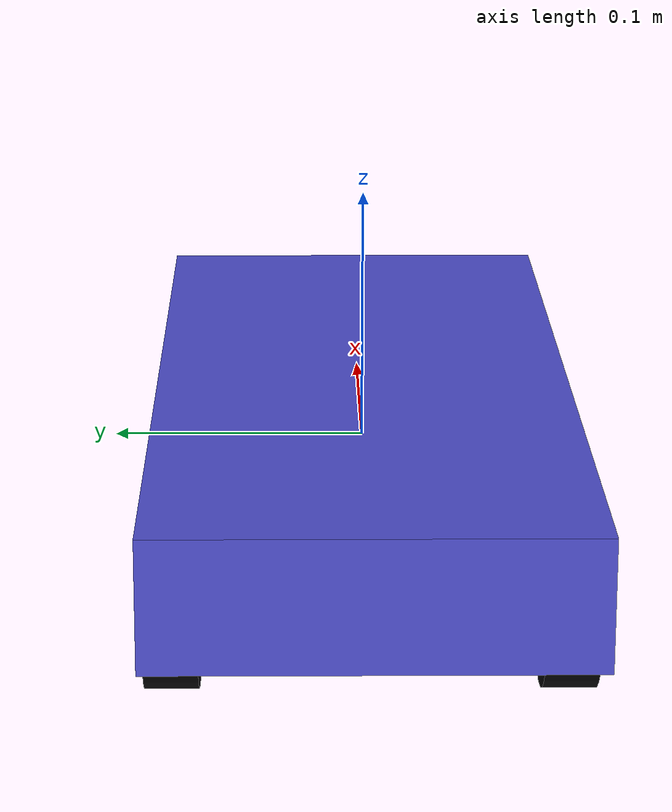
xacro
<?xml version="1.0"?>
<robot xmlns:xacro="http://ros.org/wiki/xacro" name="simple_pickup">

    <xacro:macro name="four_wheel_car"
        params="prefix='' base_length=0.392 base_width=0.165 base_height=0.05 wheel_radius=0.03 wheel_width=0.02 track_width=0.145 wheelbase=0.26 ground_clearance=0.03 chassis_mass=2.0 wheel_mass=0.2 max_steer=0.65 color='Blue'">

        <!-- computed positions -->
        <xacro:property name="x_front" value="${wheelbase/2}" />
        <xacro:property name="x_rear" value="${-wheelbase/2}" />
        <xacro:property name="y_left" value="${track_width/2}" />
        <xacro:property name="y_right" value="${-track_width/2}" />
        <!-- z_wheel chosen so the chassis bottom sits `ground_clearance` above wheel bottoms -->
        <xacro:property name="z_wheel" value="${-base_height/2 + wheel_radius - ground_clearance}" />

        <!-- base/chassis -->
        <link name="${prefix}base_link">
            <visual>
                <origin xyz="0 0 0" rpy="0 0 0" />
                <geometry>
                    <box size="${base_length} ${base_width} ${base_height}" />
                </geometry>
                <material name="${color}">
                    <color rgba="0.3 0.3 0.8 1.0" />
                </material>
            </visual>
            <collision>
                <origin xyz="0 0 0" rpy="0 0 0" />
                <geometry>
                    <box size="${base_length} ${base_width} ${base_height}" />
                </geometry>
            </collision>
            <inertial>
                <!-- approximate box inertia -->
                <mass value="${chassis_mass}" />
                <origin xyz="0 0 0" />
                <inertia
                    ixx="${(1.0/12.0)*chassis_mass*(base_height*base_height + base_width*base_width)}"
                    ixy="0.0" ixz="0.0"
                    iyy="${(1.0/12.0)*chassis_mass*(base_length*base_length + base_height*base_height)}"
                    iyz="0.0"
                    izz="${(1.0/12.0)*chassis_mass*(base_length*base_length + base_width*base_width)}" />
            </inertial>
        </link>

        <!-- Virtual footprint link: used by navigation stacks to represent the robot's
               footprint projected onto the ground plane. No visual or collision. -->
        <link name="${prefix}base_footprint" />

        <!-- Fixed joint from chassis center to footprint at ground level. We place the
               footprint at the wheel bottom (ground) computed as -base_height/2 - ground_clearance -->
        <joint name="${prefix}base_footprint_joint" type="fixed">
            <parent link="${prefix}base_link" />
            <child link="${prefix}base_footprint" />
            <origin xyz="0 0 ${-base_height/2 - ground_clearance}" rpy="0 0 0" />
        </joint>

        <!-- helper macro to add a wheel (visual + collision + inertial) -->
        <xacro:macro name="wheel_link" params="name">
            <link name="${name}">
                <visual>
                    <!-- rotate cylinder so axis aligns with wheel rotation axis (y) -->
                    <origin xyz="0 0 0" rpy="1.5708 0 0" />
                    <geometry>
                        <cylinder radius="${wheel_radius}" length="${wheel_width}" />
                    </geometry>
                    <material name="Black">
                        <color rgba="0.05 0.05 0.05 1.0" />
                    </material>
                </visual>
                <collision>
                    <origin xyz="0 0 0" rpy="1.5708 0 0" />
                    <geometry>
                        <cylinder radius="${wheel_radius}" length="${wheel_width}" />
                    </geometry>
                </collision>
                <inertial>
                    <mass value="${wheel_mass}" />
                    <origin xyz="0 0 0" />
                    <!-- rough cylinder inertia -->
                    <inertia ixx="${0.5*wheel_mass*wheel_radius*wheel_radius}" ixy="0.0" ixz="0.0"
                        iyy="${(1.0/12.0)*wheel_mass*(3*wheel_radius*wheel_radius + wheel_width*wheel_width)}"
                        iyz="0.0"
                        izz="${(1.0/12.0)*wheel_mass*(3*wheel_radius*wheel_radius + wheel_width*wheel_width)}" />
                </inertial>
            </link>
        </xacro:macro>

        <!-- FRONT LEFT wheel + steering -->
        <link name="${prefix}front_left_steer_link">
            <inertial>
                <mass value="0.01" />
                <origin xyz="0 0 0" />
                <inertia ixx="0.00001" ixy="0.0" ixz="0.0" iyy="0.00001" iyz="0.0" izz="0.00001" />
            </inertial>
        </link>
        <joint name="${prefix}front_left_steer_joint" type="revolute">
            <parent link="${prefix}base_link" />
            <child link="${prefix}front_left_steer_link" />
            <origin xyz="${x_front} ${y_left} ${z_wheel}" rpy="0 0 0" />
            <axis xyz="0 0 1" />
            <limit lower="${-max_steer}" upper="${max_steer}" effort="10.0" velocity="1.0" />
        </joint>

        <xacro:wheel_link name="${prefix}front_left_wheel_link" />
        <joint name="${prefix}front_left_wheel_joint" type="continuous">
            <parent link="${prefix}front_left_steer_link" />
            <child link="${prefix}front_left_wheel_link" />
            <origin xyz="0 0 0" rpy="0 0 0" />
            <!-- wheel rotation axis (y) -->
            <axis xyz="0 1 0" />
        </joint>

        <!-- FRONT RIGHT wheel + steering -->
        <link name="${prefix}front_right_steer_link">
            <inertial>
                <mass value="0.01" />
                <origin xyz="0 0 0" />
                <inertia ixx="0.00001" ixy="0.0" ixz="0.0" iyy="0.00001" iyz="0.0" izz="0.00001" />
            </inertial>
        </link>
        <joint name="${prefix}front_right_steer_joint" type="revolute">
            <parent link="${prefix}base_link" />
            <child link="${prefix}front_right_steer_link" />
            <origin xyz="${x_front} ${y_right} ${z_wheel}" rpy="0 0 0" />
            <axis xyz="0 0 1" />
            <limit lower="${-max_steer}" upper="${max_steer}" effort="10.0" velocity="1.0" />
        </joint>

        <xacro:wheel_link name="${prefix}front_right_wheel_link" />
        <joint name="${prefix}front_right_wheel_joint" type="continuous">
            <parent link="${prefix}front_right_steer_link" />
            <child link="${prefix}front_right_wheel_link" />
            <origin xyz="0 0 0" rpy="0 0 0" />
            <axis xyz="0 1 0" />
        </joint>

        <!-- REAR LEFT wheel (driven) -->
        <xacro:wheel_link name="${prefix}rear_left_wheel_link" />
        <joint name="${prefix}rear_left_wheel_joint" type="continuous">
            <parent link="${prefix}base_link" />
            <child link="${prefix}rear_left_wheel_link" />
            <origin xyz="${x_rear} ${y_left} ${z_wheel}" rpy="0 0 0" />
            <axis xyz="0 1 0" />
        </joint>

        <!-- REAR RIGHT wheel (driven) -->
        <xacro:wheel_link name="${prefix}rear_right_wheel_link" />
        <joint name="${prefix}rear_right_wheel_joint" type="continuous">
            <parent link="${prefix}base_link" />
            <child link="${prefix}rear_right_wheel_link" />
            <origin xyz="${x_rear} ${y_right} ${z_wheel}" rpy="0 0 0" />
            <axis xyz="0 1 0" />
        </joint>

        <!-- Note: do not attach to an undefined 'world' link (some previewers require base_link to
        be the root). -->

    </xacro:macro>

    <!-- Default instantiation -->
    <xacro:four_wheel_car />
</robot>
